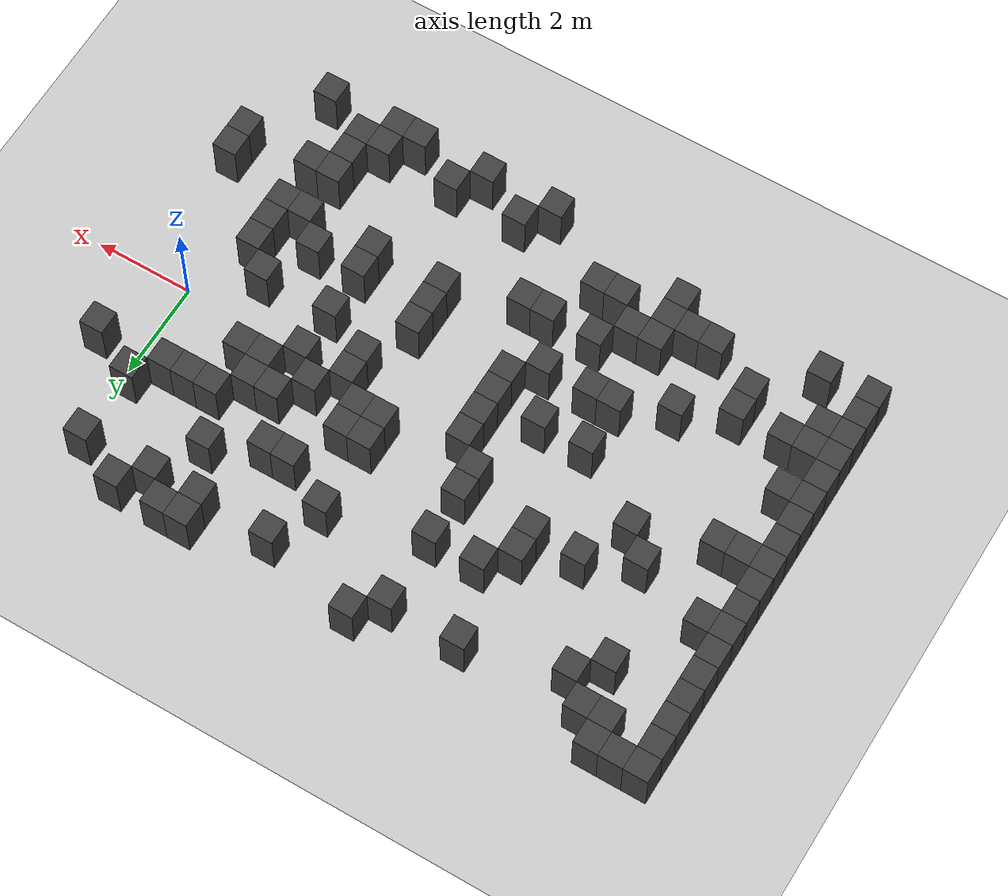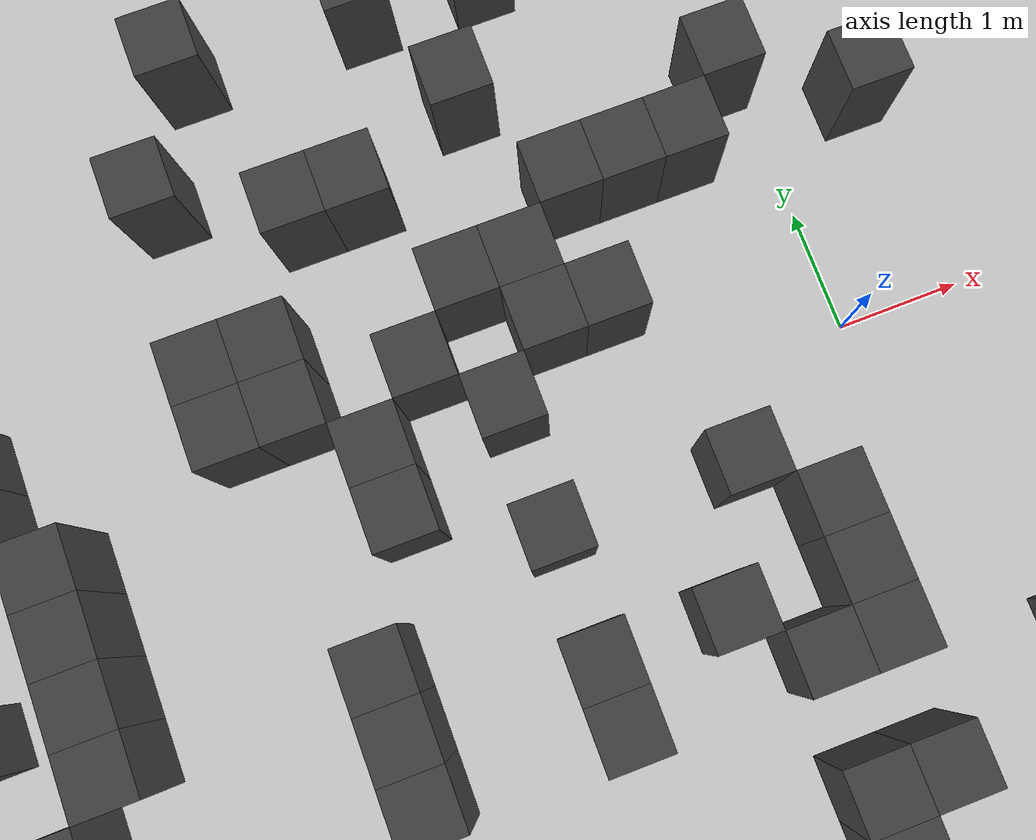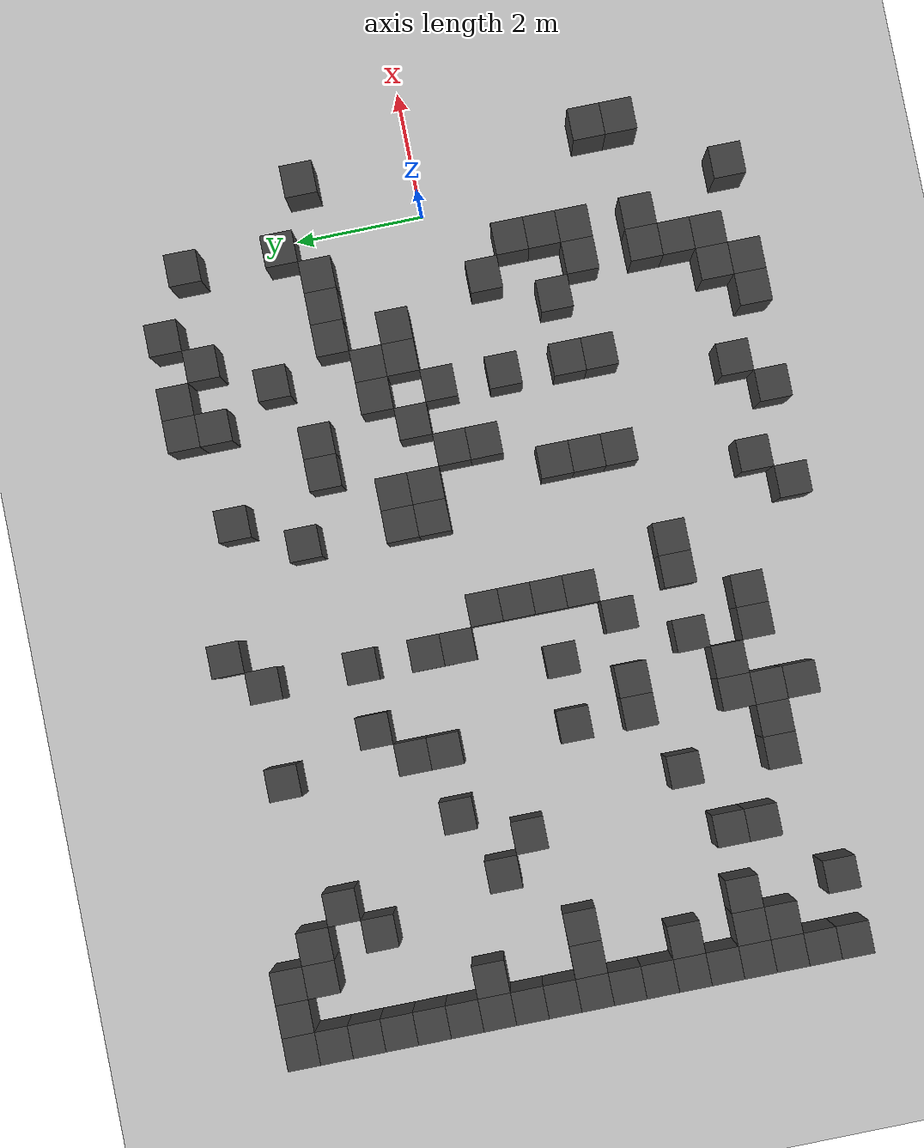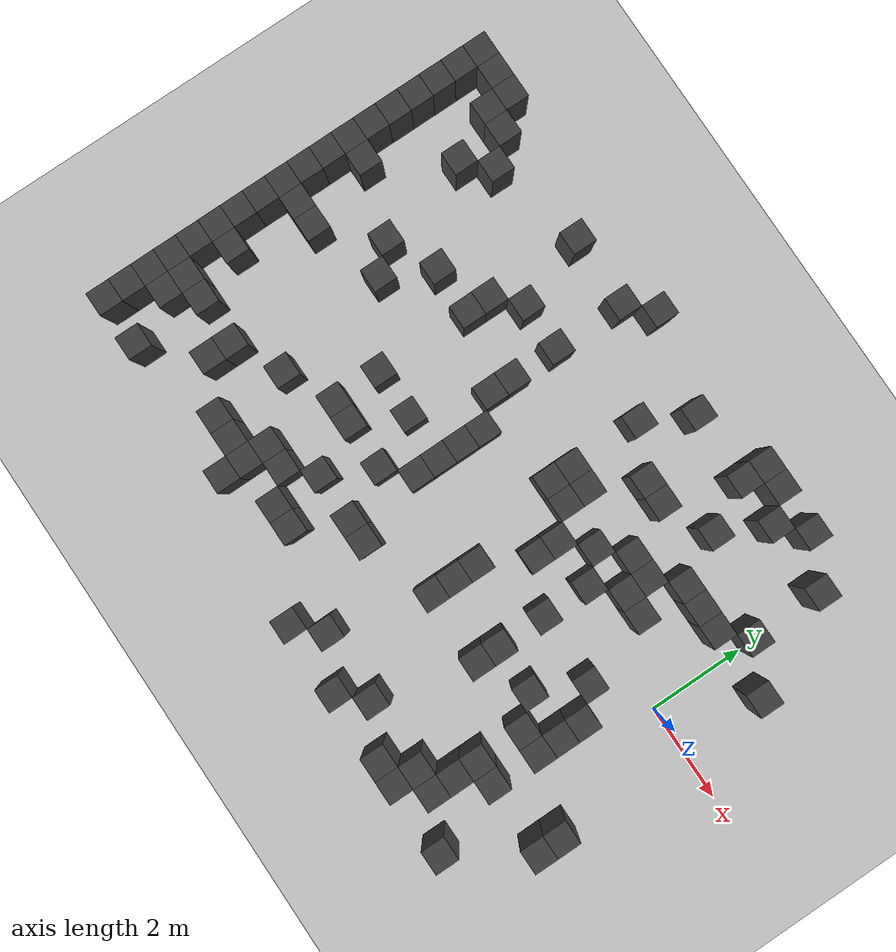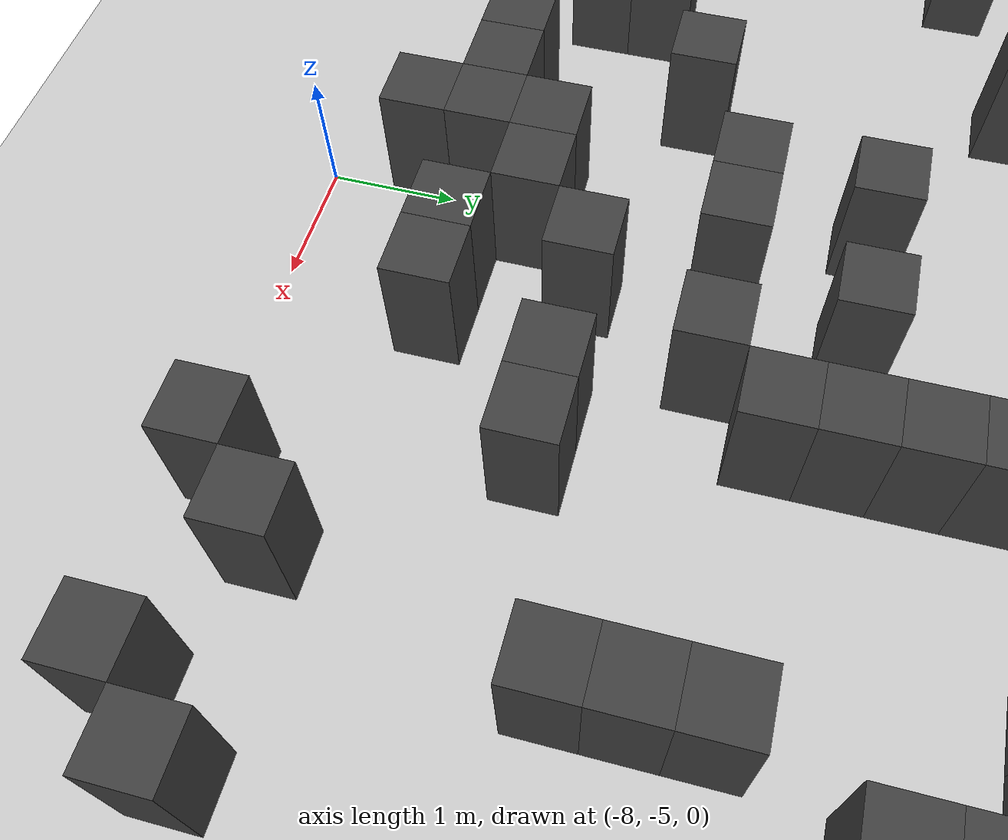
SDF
<sdf version="1.7">
 <world name="map_4818">
  <model name="ground_plane">
   <static>true</static>
   <link name="link">
    <collision name="collision">
     <geometry><plane><normal>0 0 1</normal><size>200 200</size></plane></geometry>
    </collision>
    <visual name="visual">
     <geometry><plane><normal>0 0 1</normal><size>200 200</size></plane></geometry>
     <material><ambient>0.8 0.8 0.8 1</ambient><diffuse>0.8 0.8 0.8 1</diffuse></material>
    </visual>
   </link>
  </model>
  <model name="maze_environment">
   <static>true</static>
   <link name="wall_250">
    <pose>-12.250 4.250 0.500 0 0 0</pose>
    <collision name="col"><geometry><box><size>0.5 0.5 1.0</size></box></geometry></collision>
    <visual name="vis">
     <geometry><box><size>0.5 0.5 1.0</size></box></geometry>
     <material><ambient>0.15 0.15 0.15 1</ambient><diffuse>0.25 0.25 0.25 1</diffuse></material>
    </visual>
   </link>
   <link name="wall_251">
    <pose>-11.750 4.250 0.500 0 0 0</pose>
    <collision name="col"><geometry><box><size>0.5 0.5 1.0</size></box></geometry></collision>
    <visual name="vis">
     <geometry><box><size>0.5 0.5 1.0</size></box></geometry>
     <material><ambient>0.15 0.15 0.15 1</ambient><diffuse>0.25 0.25 0.25 1</diffuse></material>
    </visual>
   </link>
   <link name="wall_252">
    <pose>-11.250 4.250 0.500 0 0 0</pose>
    <collision name="col"><geometry><box><size>0.5 0.5 1.0</size></box></geometry></collision>
    <visual name="vis">
     <geometry><box><size>0.5 0.5 1.0</size></box></geometry>
     <material><ambient>0.15 0.15 0.15 1</ambient><diffuse>0.25 0.25 0.25 1</diffuse></material>
    </visual>
   </link>
   <link name="wall_253">
    <pose>-6.250 4.250 0.500 0 0 0</pose>
    <collision name="col"><geometry><box><size>0.5 0.5 1.0</size></box></geometry></collision>
    <visual name="vis">
     <geometry><box><size>0.5 0.5 1.0</size></box></geometry>
     <material><ambient>0.15 0.15 0.15 1</ambient><diffuse>0.25 0.25 0.25 1</diffuse></material>
    </visual>
   </link>
   <link name="wall_254">
    <pose>-2.750 4.250 0.500 0 0 0</pose>
    <collision name="col"><geometry><box><size>0.5 0.5 1.0</size></box></geometry></collision>
    <visual name="vis">
     <geometry><box><size>0.5 0.5 1.0</size></box></geometry>
     <material><ambient>0.15 0.15 0.15 1</ambient><diffuse>0.25 0.25 0.25 1</diffuse></material>
    </visual>
   </link>
   <link name="wall_255">
    <pose>-2.250 4.250 0.500 0 0 0</pose>
    <collision name="col"><geometry><box><size>0.5 0.5 1.0</size></box></geometry></collision>
    <visual name="vis">
     <geometry><box><size>0.5 0.5 1.0</size></box></geometry>
     <material><ambient>0.15 0.15 0.15 1</ambient><diffuse>0.25 0.25 0.25 1</diffuse></material>
    </visual>
   </link>
   <link name="wall_256">
    <pose>-1.250 4.250 0.500 0 0 0</pose>
    <collision name="col"><geometry><box><size>0.5 0.5 1.0</size></box></geometry></collision>
    <visual name="vis">
     <geometry><box><size>0.5 0.5 1.0</size></box></geometry>
     <material><ambient>0.15 0.15 0.15 1</ambient><diffuse>0.25 0.25 0.25 1</diffuse></material>
    </visual>
   </link>
   <link name="wall_263">
    <pose>-12.250 3.750 0.500 0 0 0</pose>
    <collision name="col"><geometry><box><size>0.5 0.5 1.0</size></box></geometry></collision>
    <visual name="vis">
     <geometry><box><size>0.5 0.5 1.0</size></box></geometry>
     <material><ambient>0.15 0.15 0.15 1</ambient><diffuse>0.25 0.25 0.25 1</diffuse></material>
    </visual>
   </link>
   <link name="wall_264">
    <pose>-11.250 3.750 0.500 0 0 0</pose>
    <collision name="col"><geometry><box><size>0.5 0.5 1.0</size></box></geometry></collision>
    <visual name="vis">
     <geometry><box><size>0.5 0.5 1.0</size></box></geometry>
     <material><ambient>0.15 0.15 0.15 1</ambient><diffuse>0.25 0.25 0.25 1</diffuse></material>
    </visual>
   </link>
   <link name="wall_265">
    <pose>-10.750 3.750 0.500 0 0 0</pose>
    <collision name="col"><geometry><box><size>0.5 0.5 1.0</size></box></geometry></collision>
    <visual name="vis">
     <geometry><box><size>0.5 0.5 1.0</size></box></geometry>
     <material><ambient>0.15 0.15 0.15 1</ambient><diffuse>0.25 0.25 0.25 1</diffuse></material>
    </visual>
   </link>
   <link name="wall_266">
    <pose>-8.250 3.750 0.500 0 0 0</pose>
    <collision name="col"><geometry><box><size>0.5 0.5 1.0</size></box></geometry></collision>
    <visual name="vis">
     <geometry><box><size>0.5 0.5 1.0</size></box></geometry>
     <material><ambient>0.15 0.15 0.15 1</ambient><diffuse>0.25 0.25 0.25 1</diffuse></material>
    </visual>
   </link>
   <link name="wall_267">
    <pose>-6.750 3.750 0.500 0 0 0</pose>
    <collision name="col"><geometry><box><size>0.5 0.5 1.0</size></box></geometry></collision>
    <visual name="vis">
     <geometry><box><size>0.5 0.5 1.0</size></box></geometry>
     <material><ambient>0.15 0.15 0.15 1</ambient><diffuse>0.25 0.25 0.25 1</diffuse></material>
    </visual>
   </link>
   <link name="wall_268">
    <pose>-4.250 3.750 0.500 0 0 0</pose>
    <collision name="col"><geometry><box><size>0.5 0.5 1.0</size></box></geometry></collision>
    <visual name="vis">
     <geometry><box><size>0.5 0.5 1.0</size></box></geometry>
     <material><ambient>0.15 0.15 0.15 1</ambient><diffuse>0.25 0.25 0.25 1</diffuse></material>
    </visual>
   </link>
   <link name="wall_269">
    <pose>-2.750 3.750 0.500 0 0 0</pose>
    <collision name="col"><geometry><box><size>0.5 0.5 1.0</size></box></geometry></collision>
    <visual name="vis">
     <geometry><box><size>0.5 0.5 1.0</size></box></geometry>
     <material><ambient>0.15 0.15 0.15 1</ambient><diffuse>0.25 0.25 0.25 1</diffuse></material>
    </visual>
   </link>
   <link name="wall_270">
    <pose>-1.750 3.750 0.500 0 0 0</pose>
    <collision name="col"><geometry><box><size>0.5 0.5 1.0</size></box></geometry></collision>
    <visual name="vis">
     <geometry><box><size>0.5 0.5 1.0</size></box></geometry>
     <material><ambient>0.15 0.15 0.15 1</ambient><diffuse>0.25 0.25 0.25 1</diffuse></material>
    </visual>
   </link>
   <link name="wall_271">
    <pose>-0.250 3.750 0.500 0 0 0</pose>
    <collision name="col"><geometry><box><size>0.5 0.5 1.0</size></box></geometry></collision>
    <visual name="vis">
     <geometry><box><size>0.5 0.5 1.0</size></box></geometry>
     <material><ambient>0.15 0.15 0.15 1</ambient><diffuse>0.25 0.25 0.25 1</diffuse></material>
    </visual>
   </link>
   <link name="wall_279">
    <pose>-12.250 3.250 0.500 0 0 0</pose>
    <collision name="col"><geometry><box><size>0.5 0.5 1.0</size></box></geometry></collision>
    <visual name="vis">
     <geometry><box><size>0.5 0.5 1.0</size></box></geometry>
     <material><ambient>0.15 0.15 0.15 1</ambient><diffuse>0.25 0.25 0.25 1</diffuse></material>
    </visual>
   </link>
   <link name="wall_280">
    <pose>-10.250 3.250 0.500 0 0 0</pose>
    <collision name="col"><geometry><box><size>0.5 0.5 1.0</size></box></geometry></collision>
    <visual name="vis">
     <geometry><box><size>0.5 0.5 1.0</size></box></geometry>
     <material><ambient>0.15 0.15 0.15 1</ambient><diffuse>0.25 0.25 0.25 1</diffuse></material>
    </visual>
   </link>
   <link name="wall_286">
    <pose>-12.250 2.750 0.500 0 0 0</pose>
    <collision name="col"><geometry><box><size>0.5 0.5 1.0</size></box></geometry></collision>
    <visual name="vis">
     <geometry><box><size>0.5 0.5 1.0</size></box></geometry>
     <material><ambient>0.15 0.15 0.15 1</ambient><diffuse>0.25 0.25 0.25 1</diffuse></material>
    </visual>
   </link>
   <link name="wall_287">
    <pose>-10.750 2.750 0.500 0 0 0</pose>
    <collision name="col"><geometry><box><size>0.5 0.5 1.0</size></box></geometry></collision>
    <visual name="vis">
     <geometry><box><size>0.5 0.5 1.0</size></box></geometry>
     <material><ambient>0.15 0.15 0.15 1</ambient><diffuse>0.25 0.25 0.25 1</diffuse></material>
    </visual>
   </link>
   <link name="wall_288">
    <pose>-4.750 2.750 0.500 0 0 0</pose>
    <collision name="col"><geometry><box><size>0.5 0.5 1.0</size></box></geometry></collision>
    <visual name="vis">
     <geometry><box><size>0.5 0.5 1.0</size></box></geometry>
     <material><ambient>0.15 0.15 0.15 1</ambient><diffuse>0.25 0.25 0.25 1</diffuse></material>
    </visual>
   </link>
   <link name="wall_289">
    <pose>-2.250 2.750 0.500 0 0 0</pose>
    <collision name="col"><geometry><box><size>0.5 0.5 1.0</size></box></geometry></collision>
    <visual name="vis">
     <geometry><box><size>0.5 0.5 1.0</size></box></geometry>
     <material><ambient>0.15 0.15 0.15 1</ambient><diffuse>0.25 0.25 0.25 1</diffuse></material>
    </visual>
   </link>
   <link name="wall_299">
    <pose>-12.250 2.250 0.500 0 0 0</pose>
    <collision name="col"><geometry><box><size>0.5 0.5 1.0</size></box></geometry></collision>
    <visual name="vis">
     <geometry><box><size>0.5 0.5 1.0</size></box></geometry>
     <material><ambient>0.15 0.15 0.15 1</ambient><diffuse>0.25 0.25 0.25 1</diffuse></material>
    </visual>
   </link>
   <link name="wall_300">
    <pose>-7.750 2.250 0.500 0 0 0</pose>
    <collision name="col"><geometry><box><size>0.5 0.5 1.0</size></box></geometry></collision>
    <visual name="vis">
     <geometry><box><size>0.5 0.5 1.0</size></box></geometry>
     <material><ambient>0.15 0.15 0.15 1</ambient><diffuse>0.25 0.25 0.25 1</diffuse></material>
    </visual>
   </link>
   <link name="wall_301">
    <pose>-6.750 2.250 0.500 0 0 0</pose>
    <collision name="col"><geometry><box><size>0.5 0.5 1.0</size></box></geometry></collision>
    <visual name="vis">
     <geometry><box><size>0.5 0.5 1.0</size></box></geometry>
     <material><ambient>0.15 0.15 0.15 1</ambient><diffuse>0.25 0.25 0.25 1</diffuse></material>
    </visual>
   </link>
   <link name="wall_302">
    <pose>-3.750 2.250 0.500 0 0 0</pose>
    <collision name="col"><geometry><box><size>0.5 0.5 1.0</size></box></geometry></collision>
    <visual name="vis">
     <geometry><box><size>0.5 0.5 1.0</size></box></geometry>
     <material><ambient>0.15 0.15 0.15 1</ambient><diffuse>0.25 0.25 0.25 1</diffuse></material>
    </visual>
   </link>
   <link name="wall_303">
    <pose>-3.250 2.250 0.500 0 0 0</pose>
    <collision name="col"><geometry><box><size>0.5 0.5 1.0</size></box></geometry></collision>
    <visual name="vis">
     <geometry><box><size>0.5 0.5 1.0</size></box></geometry>
     <material><ambient>0.15 0.15 0.15 1</ambient><diffuse>0.25 0.25 0.25 1</diffuse></material>
    </visual>
   </link>
   <link name="wall_304">
    <pose>-0.250 2.250 0.500 0 0 0</pose>
    <collision name="col"><geometry><box><size>0.5 0.5 1.0</size></box></geometry></collision>
    <visual name="vis">
     <geometry><box><size>0.5 0.5 1.0</size></box></geometry>
     <material><ambient>0.15 0.15 0.15 1</ambient><diffuse>0.25 0.25 0.25 1</diffuse></material>
    </visual>
   </link>
   <link name="wall_308">
    <pose>-12.250 1.750 0.500 0 0 0</pose>
    <collision name="col"><geometry><box><size>0.5 0.5 1.0</size></box></geometry></collision>
    <visual name="vis">
     <geometry><box><size>0.5 0.5 1.0</size></box></geometry>
     <material><ambient>0.15 0.15 0.15 1</ambient><diffuse>0.25 0.25 0.25 1</diffuse></material>
    </visual>
   </link>
   <link name="wall_309">
    <pose>-8.250 1.750 0.500 0 0 0</pose>
    <collision name="col"><geometry><box><size>0.5 0.5 1.0</size></box></geometry></collision>
    <visual name="vis">
     <geometry><box><size>0.5 0.5 1.0</size></box></geometry>
     <material><ambient>0.15 0.15 0.15 1</ambient><diffuse>0.25 0.25 0.25 1</diffuse></material>
    </visual>
   </link>
   <link name="wall_310">
    <pose>-1.750 1.750 0.500 0 0 0</pose>
    <collision name="col"><geometry><box><size>0.5 0.5 1.0</size></box></geometry></collision>
    <visual name="vis">
     <geometry><box><size>0.5 0.5 1.0</size></box></geometry>
     <material><ambient>0.15 0.15 0.15 1</ambient><diffuse>0.25 0.25 0.25 1</diffuse></material>
    </visual>
   </link>
   <link name="wall_311">
    <pose>-1.250 1.750 0.500 0 0 0</pose>
    <collision name="col"><geometry><box><size>0.5 0.5 1.0</size></box></geometry></collision>
    <visual name="vis">
     <geometry><box><size>0.5 0.5 1.0</size></box></geometry>
     <material><ambient>0.15 0.15 0.15 1</ambient><diffuse>0.25 0.25 0.25 1</diffuse></material>
    </visual>
   </link>
   <link name="wall_312">
    <pose>-0.750 1.750 0.500 0 0 0</pose>
    <collision name="col"><geometry><box><size>0.5 0.5 1.0</size></box></geometry></collision>
    <visual name="vis">
     <geometry><box><size>0.5 0.5 1.0</size></box></geometry>
     <material><ambient>0.15 0.15 0.15 1</ambient><diffuse>0.25 0.25 0.25 1</diffuse></material>
    </visual>
   </link>
   <link name="wall_313">
    <pose>0.750 1.750 0.500 0 0 0</pose>
    <collision name="col"><geometry><box><size>0.5 0.5 1.0</size></box></geometry></collision>
    <visual name="vis">
     <geometry><box><size>0.5 0.5 1.0</size></box></geometry>
     <material><ambient>0.15 0.15 0.15 1</ambient><diffuse>0.25 0.25 0.25 1</diffuse></material>
    </visual>
   </link>
   <link name="wall_320">
    <pose>-12.250 1.250 0.500 0 0 0</pose>
    <collision name="col"><geometry><box><size>0.5 0.5 1.0</size></box></geometry></collision>
    <visual name="vis">
     <geometry><box><size>0.5 0.5 1.0</size></box></geometry>
     <material><ambient>0.15 0.15 0.15 1</ambient><diffuse>0.25 0.25 0.25 1</diffuse></material>
    </visual>
   </link>
   <link name="wall_321">
    <pose>-11.750 1.250 0.500 0 0 0</pose>
    <collision name="col"><geometry><box><size>0.5 0.5 1.0</size></box></geometry></collision>
    <visual name="vis">
     <geometry><box><size>0.5 0.5 1.0</size></box></geometry>
     <material><ambient>0.15 0.15 0.15 1</ambient><diffuse>0.25 0.25 0.25 1</diffuse></material>
    </visual>
   </link>
   <link name="wall_322">
    <pose>-9.250 1.250 0.500 0 0 0</pose>
    <collision name="col"><geometry><box><size>0.5 0.5 1.0</size></box></geometry></collision>
    <visual name="vis">
     <geometry><box><size>0.5 0.5 1.0</size></box></geometry>
     <material><ambient>0.15 0.15 0.15 1</ambient><diffuse>0.25 0.25 0.25 1</diffuse></material>
    </visual>
   </link>
   <link name="wall_323">
    <pose>-8.250 1.250 0.500 0 0 0</pose>
    <collision name="col"><geometry><box><size>0.5 0.5 1.0</size></box></geometry></collision>
    <visual name="vis">
     <geometry><box><size>0.5 0.5 1.0</size></box></geometry>
     <material><ambient>0.15 0.15 0.15 1</ambient><diffuse>0.25 0.25 0.25 1</diffuse></material>
    </visual>
   </link>
   <link name="wall_324">
    <pose>-6.750 1.250 0.500 0 0 0</pose>
    <collision name="col"><geometry><box><size>0.5 0.5 1.0</size></box></geometry></collision>
    <visual name="vis">
     <geometry><box><size>0.5 0.5 1.0</size></box></geometry>
     <material><ambient>0.15 0.15 0.15 1</ambient><diffuse>0.25 0.25 0.25 1</diffuse></material>
    </visual>
   </link>
   <link name="wall_325">
    <pose>-4.750 1.250 0.500 0 0 0</pose>
    <collision name="col"><geometry><box><size>0.5 0.5 1.0</size></box></geometry></collision>
    <visual name="vis">
     <geometry><box><size>0.5 0.5 1.0</size></box></geometry>
     <material><ambient>0.15 0.15 0.15 1</ambient><diffuse>0.25 0.25 0.25 1</diffuse></material>
    </visual>
   </link>
   <link name="wall_326">
    <pose>-4.250 1.250 0.500 0 0 0</pose>
    <collision name="col"><geometry><box><size>0.5 0.5 1.0</size></box></geometry></collision>
    <visual name="vis">
     <geometry><box><size>0.5 0.5 1.0</size></box></geometry>
     <material><ambient>0.15 0.15 0.15 1</ambient><diffuse>0.25 0.25 0.25 1</diffuse></material>
    </visual>
   </link>
   <link name="wall_327">
    <pose>-2.750 1.250 0.500 0 0 0</pose>
    <collision name="col"><geometry><box><size>0.5 0.5 1.0</size></box></geometry></collision>
    <visual name="vis">
     <geometry><box><size>0.5 0.5 1.0</size></box></geometry>
     <material><ambient>0.15 0.15 0.15 1</ambient><diffuse>0.25 0.25 0.25 1</diffuse></material>
    </visual>
   </link>
   <link name="wall_328">
    <pose>-2.250 1.250 0.500 0 0 0</pose>
    <collision name="col"><geometry><box><size>0.5 0.5 1.0</size></box></geometry></collision>
    <visual name="vis">
     <geometry><box><size>0.5 0.5 1.0</size></box></geometry>
     <material><ambient>0.15 0.15 0.15 1</ambient><diffuse>0.25 0.25 0.25 1</diffuse></material>
    </visual>
   </link>
   <link name="wall_335">
    <pose>-12.250 0.750 0.500 0 0 0</pose>
    <collision name="col"><geometry><box><size>0.5 0.5 1.0</size></box></geometry></collision>
    <visual name="vis">
     <geometry><box><size>0.5 0.5 1.0</size></box></geometry>
     <material><ambient>0.15 0.15 0.15 1</ambient><diffuse>0.25 0.25 0.25 1</diffuse></material>
    </visual>
   </link>
   <link name="wall_336">
    <pose>-10.250 0.750 0.500 0 0 0</pose>
    <collision name="col"><geometry><box><size>0.5 0.5 1.0</size></box></geometry></collision>
    <visual name="vis">
     <geometry><box><size>0.5 0.5 1.0</size></box></geometry>
     <material><ambient>0.15 0.15 0.15 1</ambient><diffuse>0.25 0.25 0.25 1</diffuse></material>
    </visual>
   </link>
   <link name="wall_337">
    <pose>-6.750 0.750 0.500 0 0 0</pose>
    <collision name="col"><geometry><box><size>0.5 0.5 1.0</size></box></geometry></collision>
    <visual name="vis">
     <geometry><box><size>0.5 0.5 1.0</size></box></geometry>
     <material><ambient>0.15 0.15 0.15 1</ambient><diffuse>0.25 0.25 0.25 1</diffuse></material>
    </visual>
   </link>
   <link name="wall_338">
    <pose>-4.750 0.750 0.500 0 0 0</pose>
    <collision name="col"><geometry><box><size>0.5 0.5 1.0</size></box></geometry></collision>
    <visual name="vis">
     <geometry><box><size>0.5 0.5 1.0</size></box></geometry>
     <material><ambient>0.15 0.15 0.15 1</ambient><diffuse>0.25 0.25 0.25 1</diffuse></material>
    </visual>
   </link>
   <link name="wall_339">
    <pose>-4.250 0.750 0.500 0 0 0</pose>
    <collision name="col"><geometry><box><size>0.5 0.5 1.0</size></box></geometry></collision>
    <visual name="vis">
     <geometry><box><size>0.5 0.5 1.0</size></box></geometry>
     <material><ambient>0.15 0.15 0.15 1</ambient><diffuse>0.25 0.25 0.25 1</diffuse></material>
    </visual>
   </link>
   <link name="wall_340">
    <pose>-3.250 0.750 0.500 0 0 0</pose>
    <collision name="col"><geometry><box><size>0.5 0.5 1.0</size></box></geometry></collision>
    <visual name="vis">
     <geometry><box><size>0.5 0.5 1.0</size></box></geometry>
     <material><ambient>0.15 0.15 0.15 1</ambient><diffuse>0.25 0.25 0.25 1</diffuse></material>
    </visual>
   </link>
   <link name="wall_341">
    <pose>-2.250 0.750 0.500 0 0 0</pose>
    <collision name="col"><geometry><box><size>0.5 0.5 1.0</size></box></geometry></collision>
    <visual name="vis">
     <geometry><box><size>0.5 0.5 1.0</size></box></geometry>
     <material><ambient>0.15 0.15 0.15 1</ambient><diffuse>0.25 0.25 0.25 1</diffuse></material>
    </visual>
   </link>
   <link name="wall_342">
    <pose>-1.750 0.750 0.500 0 0 0</pose>
    <collision name="col"><geometry><box><size>0.5 0.5 1.0</size></box></geometry></collision>
    <visual name="vis">
     <geometry><box><size>0.5 0.5 1.0</size></box></geometry>
     <material><ambient>0.15 0.15 0.15 1</ambient><diffuse>0.25 0.25 0.25 1</diffuse></material>
    </visual>
   </link>
   <link name="wall_346">
    <pose>-12.250 0.250 0.500 0 0 0</pose>
    <collision name="col"><geometry><box><size>0.5 0.5 1.0</size></box></geometry></collision>
    <visual name="vis">
     <geometry><box><size>0.5 0.5 1.0</size></box></geometry>
     <material><ambient>0.15 0.15 0.15 1</ambient><diffuse>0.25 0.25 0.25 1</diffuse></material>
    </visual>
   </link>
   <link name="wall_347">
    <pose>-9.750 0.250 0.500 0 0 0</pose>
    <collision name="col"><geometry><box><size>0.5 0.5 1.0</size></box></geometry></collision>
    <visual name="vis">
     <geometry><box><size>0.5 0.5 1.0</size></box></geometry>
     <material><ambient>0.15 0.15 0.15 1</ambient><diffuse>0.25 0.25 0.25 1</diffuse></material>
    </visual>
   </link>
   <link name="wall_348">
    <pose>-6.250 0.250 0.500 0 0 0</pose>
    <collision name="col"><geometry><box><size>0.5 0.5 1.0</size></box></geometry></collision>
    <visual name="vis">
     <geometry><box><size>0.5 0.5 1.0</size></box></geometry>
     <material><ambient>0.15 0.15 0.15 1</ambient><diffuse>0.25 0.25 0.25 1</diffuse></material>
    </visual>
   </link>
   <link name="wall_349">
    <pose>-3.750 0.250 0.500 0 0 0</pose>
    <collision name="col"><geometry><box><size>0.5 0.5 1.0</size></box></geometry></collision>
    <visual name="vis">
     <geometry><box><size>0.5 0.5 1.0</size></box></geometry>
     <material><ambient>0.15 0.15 0.15 1</ambient><diffuse>0.25 0.25 0.25 1</diffuse></material>
    </visual>
   </link>
   <link name="wall_350">
    <pose>-2.750 0.250 0.500 0 0 0</pose>
    <collision name="col"><geometry><box><size>0.5 0.5 1.0</size></box></geometry></collision>
    <visual name="vis">
     <geometry><box><size>0.5 0.5 1.0</size></box></geometry>
     <material><ambient>0.15 0.15 0.15 1</ambient><diffuse>0.25 0.25 0.25 1</diffuse></material>
    </visual>
   </link>
   <link name="wall_359">
    <pose>-12.250 -0.250 0.500 0 0 0</pose>
    <collision name="col"><geometry><box><size>0.5 0.5 1.0</size></box></geometry></collision>
    <visual name="vis">
     <geometry><box><size>0.5 0.5 1.0</size></box></geometry>
     <material><ambient>0.15 0.15 0.15 1</ambient><diffuse>0.25 0.25 0.25 1</diffuse></material>
    </visual>
   </link>
   <link name="wall_360">
    <pose>-11.750 -0.250 0.500 0 0 0</pose>
    <collision name="col"><geometry><box><size>0.5 0.5 1.0</size></box></geometry></collision>
    <visual name="vis">
     <geometry><box><size>0.5 0.5 1.0</size></box></geometry>
     <material><ambient>0.15 0.15 0.15 1</ambient><diffuse>0.25 0.25 0.25 1</diffuse></material>
    </visual>
   </link>
   <link name="wall_361">
    <pose>-11.250 -0.250 0.500 0 0 0</pose>
    <collision name="col"><geometry><box><size>0.5 0.5 1.0</size></box></geometry></collision>
    <visual name="vis">
     <geometry><box><size>0.5 0.5 1.0</size></box></geometry>
     <material><ambient>0.15 0.15 0.15 1</ambient><diffuse>0.25 0.25 0.25 1</diffuse></material>
    </visual>
   </link>
   <link name="wall_362">
    <pose>-6.250 -0.250 0.500 0 0 0</pose>
    <collision name="col"><geometry><box><size>0.5 0.5 1.0</size></box></geometry></collision>
    <visual name="vis">
     <geometry><box><size>0.5 0.5 1.0</size></box></geometry>
     <material><ambient>0.15 0.15 0.15 1</ambient><diffuse>0.25 0.25 0.25 1</diffuse></material>
    </visual>
   </link>
   <link name="wall_363">
    <pose>-3.750 -0.250 0.500 0 0 0</pose>
    <collision name="col"><geometry><box><size>0.5 0.5 1.0</size></box></geometry></collision>
    <visual name="vis">
     <geometry><box><size>0.5 0.5 1.0</size></box></geometry>
     <material><ambient>0.15 0.15 0.15 1</ambient><diffuse>0.25 0.25 0.25 1</diffuse></material>
    </visual>
   </link>
   <link name="wall_368">
    <pose>-12.250 -0.750 0.500 0 0 0</pose>
    <collision name="col"><geometry><box><size>0.5 0.5 1.0</size></box></geometry></collision>
    <visual name="vis">
     <geometry><box><size>0.5 0.5 1.0</size></box></geometry>
     <material><ambient>0.15 0.15 0.15 1</ambient><diffuse>0.25 0.25 0.25 1</diffuse></material>
    </visual>
   </link>
   <link name="wall_369">
    <pose>-8.250 -0.750 0.500 0 0 0</pose>
    <collision name="col"><geometry><box><size>0.5 0.5 1.0</size></box></geometry></collision>
    <visual name="vis">
     <geometry><box><size>0.5 0.5 1.0</size></box></geometry>
     <material><ambient>0.15 0.15 0.15 1</ambient><diffuse>0.25 0.25 0.25 1</diffuse></material>
    </visual>
   </link>
   <link name="wall_370">
    <pose>-7.250 -0.750 0.500 0 0 0</pose>
    <collision name="col"><geometry><box><size>0.5 0.5 1.0</size></box></geometry></collision>
    <visual name="vis">
     <geometry><box><size>0.5 0.5 1.0</size></box></geometry>
     <material><ambient>0.15 0.15 0.15 1</ambient><diffuse>0.25 0.25 0.25 1</diffuse></material>
    </visual>
   </link>
   <link name="wall_371">
    <pose>-6.250 -0.750 0.500 0 0 0</pose>
    <collision name="col"><geometry><box><size>0.5 0.5 1.0</size></box></geometry></collision>
    <visual name="vis">
     <geometry><box><size>0.5 0.5 1.0</size></box></geometry>
     <material><ambient>0.15 0.15 0.15 1</ambient><diffuse>0.25 0.25 0.25 1</diffuse></material>
    </visual>
   </link>
   <link name="wall_372">
    <pose>-2.750 -0.750 0.500 0 0 0</pose>
    <collision name="col"><geometry><box><size>0.5 0.5 1.0</size></box></geometry></collision>
    <visual name="vis">
     <geometry><box><size>0.5 0.5 1.0</size></box></geometry>
     <material><ambient>0.15 0.15 0.15 1</ambient><diffuse>0.25 0.25 0.25 1</diffuse></material>
    </visual>
   </link>
   <link name="wall_373">
    <pose>-1.250 -0.750 0.500 0 0 0</pose>
    <collision name="col"><geometry><box><size>0.5 0.5 1.0</size></box></geometry></collision>
    <visual name="vis">
     <geometry><box><size>0.5 0.5 1.0</size></box></geometry>
     <material><ambient>0.15 0.15 0.15 1</ambient><diffuse>0.25 0.25 0.25 1</diffuse></material>
    </visual>
   </link>
   <link name="wall_381">
    <pose>-12.250 -1.250 0.500 0 0 0</pose>
    <collision name="col"><geometry><box><size>0.5 0.5 1.0</size></box></geometry></collision>
    <visual name="vis">
     <geometry><box><size>0.5 0.5 1.0</size></box></geometry>
     <material><ambient>0.15 0.15 0.15 1</ambient><diffuse>0.25 0.25 0.25 1</diffuse></material>
    </visual>
   </link>
   <link name="wall_382">
    <pose>-6.250 -1.250 0.500 0 0 0</pose>
    <collision name="col"><geometry><box><size>0.5 0.5 1.0</size></box></geometry></collision>
    <visual name="vis">
     <geometry><box><size>0.5 0.5 1.0</size></box></geometry>
     <material><ambient>0.15 0.15 0.15 1</ambient><diffuse>0.25 0.25 0.25 1</diffuse></material>
    </visual>
   </link>
   <link name="wall_383">
    <pose>-4.250 -1.250 0.500 0 0 0</pose>
    <collision name="col"><geometry><box><size>0.5 0.5 1.0</size></box></geometry></collision>
    <visual name="vis">
     <geometry><box><size>0.5 0.5 1.0</size></box></geometry>
     <material><ambient>0.15 0.15 0.15 1</ambient><diffuse>0.25 0.25 0.25 1</diffuse></material>
    </visual>
   </link>
   <link name="wall_384">
    <pose>-0.750 -1.250 0.500 0 0 0</pose>
    <collision name="col"><geometry><box><size>0.5 0.5 1.0</size></box></geometry></collision>
    <visual name="vis">
     <geometry><box><size>0.5 0.5 1.0</size></box></geometry>
     <material><ambient>0.15 0.15 0.15 1</ambient><diffuse>0.25 0.25 0.25 1</diffuse></material>
    </visual>
   </link>
   <link name="wall_390">
    <pose>-12.250 -1.750 0.500 0 0 0</pose>
    <collision name="col"><geometry><box><size>0.5 0.5 1.0</size></box></geometry></collision>
    <visual name="vis">
     <geometry><box><size>0.5 0.5 1.0</size></box></geometry>
     <material><ambient>0.15 0.15 0.15 1</ambient><diffuse>0.25 0.25 0.25 1</diffuse></material>
    </visual>
   </link>
   <link name="wall_391">
    <pose>-11.750 -1.750 0.500 0 0 0</pose>
    <collision name="col"><geometry><box><size>0.5 0.5 1.0</size></box></geometry></collision>
    <visual name="vis">
     <geometry><box><size>0.5 0.5 1.0</size></box></geometry>
     <material><ambient>0.15 0.15 0.15 1</ambient><diffuse>0.25 0.25 0.25 1</diffuse></material>
    </visual>
   </link>
   <link name="wall_392">
    <pose>-8.250 -1.750 0.500 0 0 0</pose>
    <collision name="col"><geometry><box><size>0.5 0.5 1.0</size></box></geometry></collision>
    <visual name="vis">
     <geometry><box><size>0.5 0.5 1.0</size></box></geometry>
     <material><ambient>0.15 0.15 0.15 1</ambient><diffuse>0.25 0.25 0.25 1</diffuse></material>
    </visual>
   </link>
   <link name="wall_393">
    <pose>-7.750 -1.750 0.500 0 0 0</pose>
    <collision name="col"><geometry><box><size>0.5 0.5 1.0</size></box></geometry></collision>
    <visual name="vis">
     <geometry><box><size>0.5 0.5 1.0</size></box></geometry>
     <material><ambient>0.15 0.15 0.15 1</ambient><diffuse>0.25 0.25 0.25 1</diffuse></material>
    </visual>
   </link>
   <link name="wall_394">
    <pose>-6.750 -1.750 0.500 0 0 0</pose>
    <collision name="col"><geometry><box><size>0.5 0.5 1.0</size></box></geometry></collision>
    <visual name="vis">
     <geometry><box><size>0.5 0.5 1.0</size></box></geometry>
     <material><ambient>0.15 0.15 0.15 1</ambient><diffuse>0.25 0.25 0.25 1</diffuse></material>
    </visual>
   </link>
   <link name="wall_395">
    <pose>-4.250 -1.750 0.500 0 0 0</pose>
    <collision name="col"><geometry><box><size>0.5 0.5 1.0</size></box></geometry></collision>
    <visual name="vis">
     <geometry><box><size>0.5 0.5 1.0</size></box></geometry>
     <material><ambient>0.15 0.15 0.15 1</ambient><diffuse>0.25 0.25 0.25 1</diffuse></material>
    </visual>
   </link>
   <link name="wall_396">
    <pose>-2.750 -1.750 0.500 0 0 0</pose>
    <collision name="col"><geometry><box><size>0.5 0.5 1.0</size></box></geometry></collision>
    <visual name="vis">
     <geometry><box><size>0.5 0.5 1.0</size></box></geometry>
     <material><ambient>0.15 0.15 0.15 1</ambient><diffuse>0.25 0.25 0.25 1</diffuse></material>
    </visual>
   </link>
   <link name="wall_397">
    <pose>-1.750 -1.750 0.500 0 0 0</pose>
    <collision name="col"><geometry><box><size>0.5 0.5 1.0</size></box></geometry></collision>
    <visual name="vis">
     <geometry><box><size>0.5 0.5 1.0</size></box></geometry>
     <material><ambient>0.15 0.15 0.15 1</ambient><diffuse>0.25 0.25 0.25 1</diffuse></material>
    </visual>
   </link>
   <link name="wall_398">
    <pose>-0.750 -1.750 0.500 0 0 0</pose>
    <collision name="col"><geometry><box><size>0.5 0.5 1.0</size></box></geometry></collision>
    <visual name="vis">
     <geometry><box><size>0.5 0.5 1.0</size></box></geometry>
     <material><ambient>0.15 0.15 0.15 1</ambient><diffuse>0.25 0.25 0.25 1</diffuse></material>
    </visual>
   </link>
   <link name="wall_402">
    <pose>-12.250 -2.250 0.500 0 0 0</pose>
    <collision name="col"><geometry><box><size>0.5 0.5 1.0</size></box></geometry></collision>
    <visual name="vis">
     <geometry><box><size>0.5 0.5 1.0</size></box></geometry>
     <material><ambient>0.15 0.15 0.15 1</ambient><diffuse>0.25 0.25 0.25 1</diffuse></material>
    </visual>
   </link>
   <link name="wall_403">
    <pose>-9.250 -2.250 0.500 0 0 0</pose>
    <collision name="col"><geometry><box><size>0.5 0.5 1.0</size></box></geometry></collision>
    <visual name="vis">
     <geometry><box><size>0.5 0.5 1.0</size></box></geometry>
     <material><ambient>0.15 0.15 0.15 1</ambient><diffuse>0.25 0.25 0.25 1</diffuse></material>
    </visual>
   </link>
   <link name="wall_404">
    <pose>-4.250 -2.250 0.500 0 0 0</pose>
    <collision name="col"><geometry><box><size>0.5 0.5 1.0</size></box></geometry></collision>
    <visual name="vis">
     <geometry><box><size>0.5 0.5 1.0</size></box></geometry>
     <material><ambient>0.15 0.15 0.15 1</ambient><diffuse>0.25 0.25 0.25 1</diffuse></material>
    </visual>
   </link>
   <link name="wall_405">
    <pose>-2.750 -2.250 0.500 0 0 0</pose>
    <collision name="col"><geometry><box><size>0.5 0.5 1.0</size></box></geometry></collision>
    <visual name="vis">
     <geometry><box><size>0.5 0.5 1.0</size></box></geometry>
     <material><ambient>0.15 0.15 0.15 1</ambient><diffuse>0.25 0.25 0.25 1</diffuse></material>
    </visual>
   </link>
   <link name="wall_406">
    <pose>-1.250 -2.250 0.500 0 0 0</pose>
    <collision name="col"><geometry><box><size>0.5 0.5 1.0</size></box></geometry></collision>
    <visual name="vis">
     <geometry><box><size>0.5 0.5 1.0</size></box></geometry>
     <material><ambient>0.15 0.15 0.15 1</ambient><diffuse>0.25 0.25 0.25 1</diffuse></material>
    </visual>
   </link>
   <link name="wall_407">
    <pose>-0.750 -2.250 0.500 0 0 0</pose>
    <collision name="col"><geometry><box><size>0.5 0.5 1.0</size></box></geometry></collision>
    <visual name="vis">
     <geometry><box><size>0.5 0.5 1.0</size></box></geometry>
     <material><ambient>0.15 0.15 0.15 1</ambient><diffuse>0.25 0.25 0.25 1</diffuse></material>
    </visual>
   </link>
   <link name="wall_415">
    <pose>-12.250 -2.750 0.500 0 0 0</pose>
    <collision name="col"><geometry><box><size>0.5 0.5 1.0</size></box></geometry></collision>
    <visual name="vis">
     <geometry><box><size>0.5 0.5 1.0</size></box></geometry>
     <material><ambient>0.15 0.15 0.15 1</ambient><diffuse>0.25 0.25 0.25 1</diffuse></material>
    </visual>
   </link>
   <link name="wall_416">
    <pose>-11.750 -2.750 0.500 0 0 0</pose>
    <collision name="col"><geometry><box><size>0.5 0.5 1.0</size></box></geometry></collision>
    <visual name="vis">
     <geometry><box><size>0.5 0.5 1.0</size></box></geometry>
     <material><ambient>0.15 0.15 0.15 1</ambient><diffuse>0.25 0.25 0.25 1</diffuse></material>
    </visual>
   </link>
   <link name="wall_417">
    <pose>-11.250 -2.750 0.500 0 0 0</pose>
    <collision name="col"><geometry><box><size>0.5 0.5 1.0</size></box></geometry></collision>
    <visual name="vis">
     <geometry><box><size>0.5 0.5 1.0</size></box></geometry>
     <material><ambient>0.15 0.15 0.15 1</ambient><diffuse>0.25 0.25 0.25 1</diffuse></material>
    </visual>
   </link>
   <link name="wall_418">
    <pose>-10.250 -2.750 0.500 0 0 0</pose>
    <collision name="col"><geometry><box><size>0.5 0.5 1.0</size></box></geometry></collision>
    <visual name="vis">
     <geometry><box><size>0.5 0.5 1.0</size></box></geometry>
     <material><ambient>0.15 0.15 0.15 1</ambient><diffuse>0.25 0.25 0.25 1</diffuse></material>
    </visual>
   </link>
   <link name="wall_419">
    <pose>-7.250 -2.750 0.500 0 0 0</pose>
    <collision name="col"><geometry><box><size>0.5 0.5 1.0</size></box></geometry></collision>
    <visual name="vis">
     <geometry><box><size>0.5 0.5 1.0</size></box></geometry>
     <material><ambient>0.15 0.15 0.15 1</ambient><diffuse>0.25 0.25 0.25 1</diffuse></material>
    </visual>
   </link>
   <link name="wall_420">
    <pose>-6.250 -2.750 0.500 0 0 0</pose>
    <collision name="col"><geometry><box><size>0.5 0.5 1.0</size></box></geometry></collision>
    <visual name="vis">
     <geometry><box><size>0.5 0.5 1.0</size></box></geometry>
     <material><ambient>0.15 0.15 0.15 1</ambient><diffuse>0.25 0.25 0.25 1</diffuse></material>
    </visual>
   </link>
   <link name="wall_421">
    <pose>-5.750 -2.750 0.500 0 0 0</pose>
    <collision name="col"><geometry><box><size>0.5 0.5 1.0</size></box></geometry></collision>
    <visual name="vis">
     <geometry><box><size>0.5 0.5 1.0</size></box></geometry>
     <material><ambient>0.15 0.15 0.15 1</ambient><diffuse>0.25 0.25 0.25 1</diffuse></material>
    </visual>
   </link>
   <link name="wall_422">
    <pose>0.750 -2.750 0.500 0 0 0</pose>
    <collision name="col"><geometry><box><size>0.5 0.5 1.0</size></box></geometry></collision>
    <visual name="vis">
     <geometry><box><size>0.5 0.5 1.0</size></box></geometry>
     <material><ambient>0.15 0.15 0.15 1</ambient><diffuse>0.25 0.25 0.25 1</diffuse></material>
    </visual>
   </link>
   <link name="wall_430">
    <pose>-12.250 -3.250 0.500 0 0 0</pose>
    <collision name="col"><geometry><box><size>0.5 0.5 1.0</size></box></geometry></collision>
    <visual name="vis">
     <geometry><box><size>0.5 0.5 1.0</size></box></geometry>
     <material><ambient>0.15 0.15 0.15 1</ambient><diffuse>0.25 0.25 0.25 1</diffuse></material>
    </visual>
   </link>
   <link name="wall_431">
    <pose>-11.750 -3.250 0.500 0 0 0</pose>
    <collision name="col"><geometry><box><size>0.5 0.5 1.0</size></box></geometry></collision>
    <visual name="vis">
     <geometry><box><size>0.5 0.5 1.0</size></box></geometry>
     <material><ambient>0.15 0.15 0.15 1</ambient><diffuse>0.25 0.25 0.25 1</diffuse></material>
    </visual>
   </link>
   <link name="wall_432">
    <pose>-10.250 -3.250 0.500 0 0 0</pose>
    <collision name="col"><geometry><box><size>0.5 0.5 1.0</size></box></geometry></collision>
    <visual name="vis">
     <geometry><box><size>0.5 0.5 1.0</size></box></geometry>
     <material><ambient>0.15 0.15 0.15 1</ambient><diffuse>0.25 0.25 0.25 1</diffuse></material>
    </visual>
   </link>
   <link name="wall_433">
    <pose>-8.250 -3.250 0.500 0 0 0</pose>
    <collision name="col"><geometry><box><size>0.5 0.5 1.0</size></box></geometry></collision>
    <visual name="vis">
     <geometry><box><size>0.5 0.5 1.0</size></box></geometry>
     <material><ambient>0.15 0.15 0.15 1</ambient><diffuse>0.25 0.25 0.25 1</diffuse></material>
    </visual>
   </link>
   <link name="wall_434">
    <pose>-7.750 -3.250 0.500 0 0 0</pose>
    <collision name="col"><geometry><box><size>0.5 0.5 1.0</size></box></geometry></collision>
    <visual name="vis">
     <geometry><box><size>0.5 0.5 1.0</size></box></geometry>
     <material><ambient>0.15 0.15 0.15 1</ambient><diffuse>0.25 0.25 0.25 1</diffuse></material>
    </visual>
   </link>
   <link name="wall_435">
    <pose>-1.250 -3.250 0.500 0 0 0</pose>
    <collision name="col"><geometry><box><size>0.5 0.5 1.0</size></box></geometry></collision>
    <visual name="vis">
     <geometry><box><size>0.5 0.5 1.0</size></box></geometry>
     <material><ambient>0.15 0.15 0.15 1</ambient><diffuse>0.25 0.25 0.25 1</diffuse></material>
    </visual>
   </link>
   <link name="wall_436">
    <pose>-0.750 -3.250 0.500 0 0 0</pose>
    <collision name="col"><geometry><box><size>0.5 0.5 1.0</size></box></geometry></collision>
    <visual name="vis">
     <geometry><box><size>0.5 0.5 1.0</size></box></geometry>
     <material><ambient>0.15 0.15 0.15 1</ambient><diffuse>0.25 0.25 0.25 1</diffuse></material>
    </visual>
   </link>
   <link name="wall_437">
    <pose>0.750 -3.250 0.500 0 0 0</pose>
    <collision name="col"><geometry><box><size>0.5 0.5 1.0</size></box></geometry></collision>
    <visual name="vis">
     <geometry><box><size>0.5 0.5 1.0</size></box></geometry>
     <material><ambient>0.15 0.15 0.15 1</ambient><diffuse>0.25 0.25 0.25 1</diffuse></material>
    </visual>
   </link>
   <link name="wall_444">
    <pose>-12.250 -3.750 0.500 0 0 0</pose>
    <collision name="col"><geometry><box><size>0.5 0.5 1.0</size></box></geometry></collision>
    <visual name="vis">
     <geometry><box><size>0.5 0.5 1.0</size></box></geometry>
     <material><ambient>0.15 0.15 0.15 1</ambient><diffuse>0.25 0.25 0.25 1</diffuse></material>
    </visual>
   </link>
   <link name="wall_445">
    <pose>-9.250 -3.750 0.500 0 0 0</pose>
    <collision name="col"><geometry><box><size>0.5 0.5 1.0</size></box></geometry></collision>
    <visual name="vis">
     <geometry><box><size>0.5 0.5 1.0</size></box></geometry>
     <material><ambient>0.15 0.15 0.15 1</ambient><diffuse>0.25 0.25 0.25 1</diffuse></material>
    </visual>
   </link>
   <link name="wall_446">
    <pose>-8.750 -3.750 0.500 0 0 0</pose>
    <collision name="col"><geometry><box><size>0.5 0.5 1.0</size></box></geometry></collision>
    <visual name="vis">
     <geometry><box><size>0.5 0.5 1.0</size></box></geometry>
     <material><ambient>0.15 0.15 0.15 1</ambient><diffuse>0.25 0.25 0.25 1</diffuse></material>
    </visual>
   </link>
   <link name="wall_447">
    <pose>-8.250 -3.750 0.500 0 0 0</pose>
    <collision name="col"><geometry><box><size>0.5 0.5 1.0</size></box></geometry></collision>
    <visual name="vis">
     <geometry><box><size>0.5 0.5 1.0</size></box></geometry>
     <material><ambient>0.15 0.15 0.15 1</ambient><diffuse>0.25 0.25 0.25 1</diffuse></material>
    </visual>
   </link>
   <link name="wall_448">
    <pose>-7.250 -3.750 0.500 0 0 0</pose>
    <collision name="col"><geometry><box><size>0.5 0.5 1.0</size></box></geometry></collision>
    <visual name="vis">
     <geometry><box><size>0.5 0.5 1.0</size></box></geometry>
     <material><ambient>0.15 0.15 0.15 1</ambient><diffuse>0.25 0.25 0.25 1</diffuse></material>
    </visual>
   </link>
   <link name="wall_449">
    <pose>-6.750 -3.750 0.500 0 0 0</pose>
    <collision name="col"><geometry><box><size>0.5 0.5 1.0</size></box></geometry></collision>
    <visual name="vis">
     <geometry><box><size>0.5 0.5 1.0</size></box></geometry>
     <material><ambient>0.15 0.15 0.15 1</ambient><diffuse>0.25 0.25 0.25 1</diffuse></material>
    </visual>
   </link>
   <link name="wall_450">
    <pose>-1.250 -3.750 0.500 0 0 0</pose>
    <collision name="col"><geometry><box><size>0.5 0.5 1.0</size></box></geometry></collision>
    <visual name="vis">
     <geometry><box><size>0.5 0.5 1.0</size></box></geometry>
     <material><ambient>0.15 0.15 0.15 1</ambient><diffuse>0.25 0.25 0.25 1</diffuse></material>
    </visual>
   </link>
   <link name="wall_455">
    <pose>-12.250 -4.250 0.500 0 0 0</pose>
    <collision name="col"><geometry><box><size>0.5 0.5 1.0</size></box></geometry></collision>
    <visual name="vis">
     <geometry><box><size>0.5 0.5 1.0</size></box></geometry>
     <material><ambient>0.15 0.15 0.15 1</ambient><diffuse>0.25 0.25 0.25 1</diffuse></material>
    </visual>
   </link>
   <link name="wall_456">
    <pose>-11.250 -4.250 0.500 0 0 0</pose>
    <collision name="col"><geometry><box><size>0.5 0.5 1.0</size></box></geometry></collision>
    <visual name="vis">
     <geometry><box><size>0.5 0.5 1.0</size></box></geometry>
     <material><ambient>0.15 0.15 0.15 1</ambient><diffuse>0.25 0.25 0.25 1</diffuse></material>
    </visual>
   </link>
   <link name="wall_457">
    <pose>-8.250 -4.250 0.500 0 0 0</pose>
    <collision name="col"><geometry><box><size>0.5 0.5 1.0</size></box></geometry></collision>
    <visual name="vis">
     <geometry><box><size>0.5 0.5 1.0</size></box></geometry>
     <material><ambient>0.15 0.15 0.15 1</ambient><diffuse>0.25 0.25 0.25 1</diffuse></material>
    </visual>
   </link>
   <link name="wall_458">
    <pose>-4.750 -4.250 0.500 0 0 0</pose>
    <collision name="col"><geometry><box><size>0.5 0.5 1.0</size></box></geometry></collision>
    <visual name="vis">
     <geometry><box><size>0.5 0.5 1.0</size></box></geometry>
     <material><ambient>0.15 0.15 0.15 1</ambient><diffuse>0.25 0.25 0.25 1</diffuse></material>
    </visual>
   </link>
   <link name="wall_459">
    <pose>-3.250 -4.250 0.500 0 0 0</pose>
    <collision name="col"><geometry><box><size>0.5 0.5 1.0</size></box></geometry></collision>
    <visual name="vis">
     <geometry><box><size>0.5 0.5 1.0</size></box></geometry>
     <material><ambient>0.15 0.15 0.15 1</ambient><diffuse>0.25 0.25 0.25 1</diffuse></material>
    </visual>
   </link>
   <link name="wall_460">
    <pose>-1.750 -4.250 0.500 0 0 0</pose>
    <collision name="col"><geometry><box><size>0.5 0.5 1.0</size></box></geometry></collision>
    <visual name="vis">
     <geometry><box><size>0.5 0.5 1.0</size></box></geometry>
     <material><ambient>0.15 0.15 0.15 1</ambient><diffuse>0.25 0.25 0.25 1</diffuse></material>
    </visual>
   </link>
   <link name="wall_461">
    <pose>-1.250 -4.250 0.500 0 0 0</pose>
    <collision name="col"><geometry><box><size>0.5 0.5 1.0</size></box></geometry></collision>
    <visual name="vis">
     <geometry><box><size>0.5 0.5 1.0</size></box></geometry>
     <material><ambient>0.15 0.15 0.15 1</ambient><diffuse>0.25 0.25 0.25 1</diffuse></material>
    </visual>
   </link>
   <link name="wall_473">
    <pose>-5.250 -4.750 0.500 0 0 0</pose>
    <collision name="col"><geometry><box><size>0.5 0.5 1.0</size></box></geometry></collision>
    <visual name="vis">
     <geometry><box><size>0.5 0.5 1.0</size></box></geometry>
     <material><ambient>0.15 0.15 0.15 1</ambient><diffuse>0.25 0.25 0.25 1</diffuse></material>
    </visual>
   </link>
   <link name="wall_474">
    <pose>-3.750 -4.750 0.500 0 0 0</pose>
    <collision name="col"><geometry><box><size>0.5 0.5 1.0</size></box></geometry></collision>
    <visual name="vis">
     <geometry><box><size>0.5 0.5 1.0</size></box></geometry>
     <material><ambient>0.15 0.15 0.15 1</ambient><diffuse>0.25 0.25 0.25 1</diffuse></material>
    </visual>
   </link>
   <link name="wall_475">
    <pose>-2.250 -4.750 0.500 0 0 0</pose>
    <collision name="col"><geometry><box><size>0.5 0.5 1.0</size></box></geometry></collision>
    <visual name="vis">
     <geometry><box><size>0.5 0.5 1.0</size></box></geometry>
     <material><ambient>0.15 0.15 0.15 1</ambient><diffuse>0.25 0.25 0.25 1</diffuse></material>
    </visual>
   </link>
   <link name="wall_476">
    <pose>-1.750 -4.750 0.500 0 0 0</pose>
    <collision name="col"><geometry><box><size>0.5 0.5 1.0</size></box></geometry></collision>
    <visual name="vis">
     <geometry><box><size>0.5 0.5 1.0</size></box></geometry>
     <material><ambient>0.15 0.15 0.15 1</ambient><diffuse>0.25 0.25 0.25 1</diffuse></material>
    </visual>
   </link>
   <link name="wall_477">
    <pose>-0.250 -4.750 0.500 0 0 0</pose>
    <collision name="col"><geometry><box><size>0.5 0.5 1.0</size></box></geometry></collision>
    <visual name="vis">
     <geometry><box><size>0.5 0.5 1.0</size></box></geometry>
     <material><ambient>0.15 0.15 0.15 1</ambient><diffuse>0.25 0.25 0.25 1</diffuse></material>
    </visual>
   </link>
  </model>
 </world>
</sdf>
